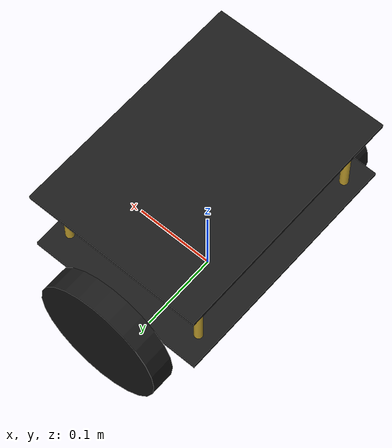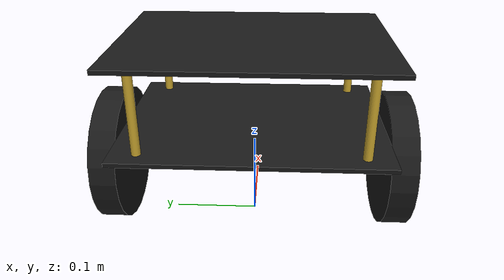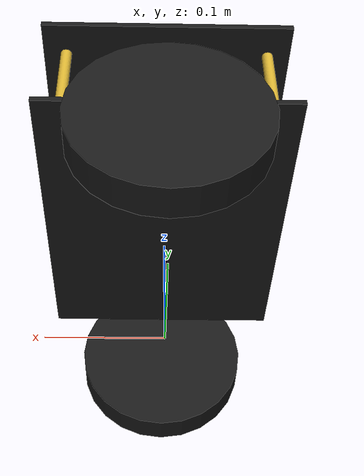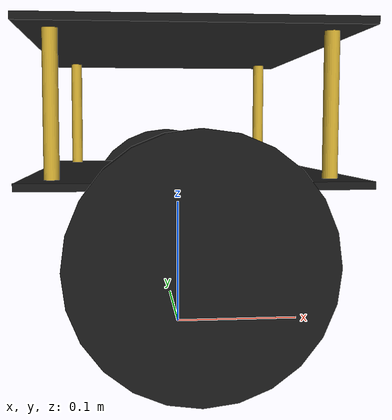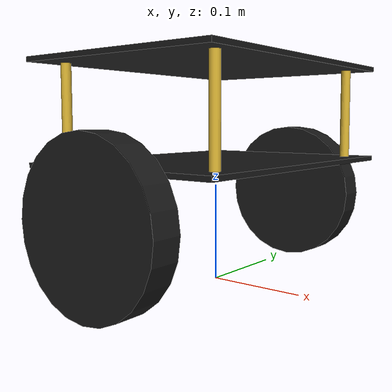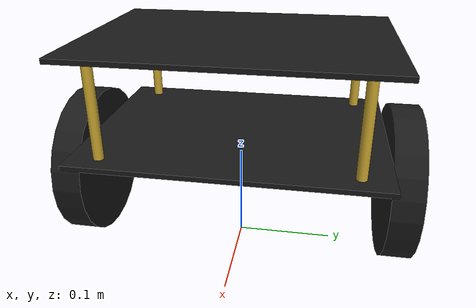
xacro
<?xml version="1.0"?>

<robot name="two_wheel_robot" xmlns:xacro="http://www.ros.org/wiki/xacro">

    <!-- Include Gazebo Parameters -->
    <xacro:include filename="$(find robot_description)/urdf/two_wheel_robot_gazebo.urdf.xacro" />

    <!-- Include ros2_control Plugins -->
    <xacro:include filename="$(find robot_description)/urdf/two_wheel_robot_ros2_control.urdf.xacro" />

    <!-- Links -->

    <link name="base_footprint"/>

    <link name="base_link">

        <inertial>
            <origin xyz="0 0 0.095"/>
            <mass value="0.80"/>

            <inertia
                ixx="0.0068067"
                ixy="0.0"
                ixz="0.0"
                iyy="0.0040333"
                iyz="0.0"
                izz="0.0092267"/>
        </inertial>

        <!-- Lower plate -->
        <visual>
            <origin xyz="0 0 0.045"/>
            <geometry>
                <box size="0.22 0.30 0.005"/>
            </geometry>

            <material name="black">
                <color rgba="0.1 0.1 0.1 1"/>
            </material>
        </visual>

        <!-- Upper plate -->
        <visual>
            <origin xyz="0 0 0.145"/>
            <geometry>
                <box size="0.22 0.30 0.005"/>
            </geometry>

            <material name="black"/>
        </visual>

        <!-- Front left standoff -->
        <visual>
            <origin xyz="0.09 0.12 0.095"/>
            <geometry>
                <cylinder radius="0.005" length="0.10"/>
            </geometry>

            <material name="gold">
                <color rgba="0.85 0.70 0.20 1"/>
            </material>
        </visual>

        <!-- Front right standoff -->
        <visual>
            <origin xyz="0.09 -0.12 0.095"/>
            <geometry>
                <cylinder radius="0.005" length="0.10"/>
            </geometry>

            <material name="gold"/>
        </visual>

        <!-- Rear left standoff -->
        <visual>
            <origin xyz="-0.09 0.12 0.095"/>
            <geometry>
                <cylinder radius="0.005" length="0.10"/>
            </geometry>

            <material name="gold"/>
        </visual>

        <!-- Rear right standoff -->
        <visual>
            <origin xyz="-0.09 -0.12 0.095"/>
            <geometry>
                <cylinder radius="0.005" length="0.10"/>
            </geometry>

            <material name="gold"/>
        </visual>

        <collision>
            <origin xyz="0 0 0.095"/>
            <geometry>
                <box size="0.22 0.30 0.11"/>
            </geometry>
        </collision>

    </link>

    <link name="left_wheel">
        <inertial>
            <origin xyz="0 0 0"/>
            <mass value="0.5"/>
            <inertia
                ixx="0.0008375" ixy="0.0" ixz="0.0"
                iyy="0.0016000" iyz="0.0"
                izz="0.0008375"/>
        </inertial>

        <visual>
            <origin xyz="0 0 0" rpy="1.5707 0 0"/>
            <geometry>
                <cylinder radius="0.08" length="0.03"/>
            </geometry>
            <material name="black">
                <color rgba="0.1 0.1 0.1 1"/>
            </material>
        </visual>

        <collision>
            <origin xyz="0 0 0" rpy="1.5707 0 0"/>
            <geometry>
                <cylinder radius="0.08" length="0.03"/>
            </geometry>
        </collision>
    </link>

    <link name="right_wheel">
        <inertial>
            <origin xyz="0 0 0"/>
            <mass value="0.5"/>
            <inertia
                ixx="0.0008375" ixy="0.0" ixz="0.0"
                iyy="0.0016000" iyz="0.0"
                izz="0.0008375"/>
        </inertial>

        <visual>
            <origin xyz="0 0 0" rpy="1.5707 0 0"/>
            <geometry>
                <cylinder radius="0.08" length="0.03"/>
            </geometry>
            <material name="black">
                <color rgba="0.1 0.1 0.1 1"/>
            </material>
        </visual>

        <collision>
            <origin xyz="0 0 0" rpy="1.5707 0 0"/>
            <geometry>
                <cylinder radius="0.08" length="0.03"/>
            </geometry>
        </collision>
    </link>

    <!-- Joints -->

    <joint name="base_footprint_joint" type="fixed">
        <parent link="base_footprint"/>
        <child link="base_link"/>
        <origin xyz="0 0 0.08" rpy="0 0 0"/>
    </joint>

    <joint name="left_wheel_joint" type="continuous">
        <parent link="base_link"/>
        <child link="left_wheel"/>
        <origin xyz="0 0.165 0"/>
        <axis xyz="0 1 0"/>
        <dynamics damping="0.01" friction="0.01"/>
    </joint>

    <joint name="right_wheel_joint" type="continuous">
        <parent link="base_link"/>
        <child link="right_wheel"/>
        <origin xyz="0 -0.165 0"/>
        <axis xyz="0 1 0"/>
        <dynamics damping="0.01" friction="0.01"/>
    </joint>

    <!-- IMU -->
    <link name="imu_link">

        <inertial>
            <origin xyz="0 0 0"/>
            <mass value="0.01"/>

            <inertia
                ixx="0.0000007708"
                ixy="0.0"
                ixz="0.0"
                iyy="0.0000003542"
                iyz="0.0"
                izz="0.0000010833"/>
        </inertial>

    </link>

    <joint name="imu_joint" type="fixed">
        <parent link="base_link"/>
        <child link="imu_link"/>
        <origin xyz="0 0 0"/>
    </joint>

</robot>
